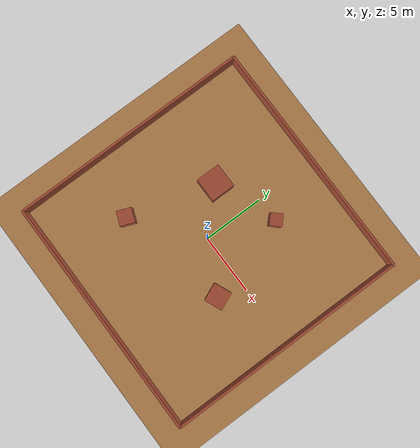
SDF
<sdf version='1.7'>
  <world name='indoor_2d'>
    <light name='sun' type='directional'>
      <cast_shadows>1</cast_shadows>
      <pose>0 0 10 0 -0 0</pose>
      <diffuse>0.8 0.8 0.8 1</diffuse>
      <specular>0.2 0.2 0.2 1</specular>
      <attenuation>
        <range>1000</range>
        <constant>0.9</constant>
        <linear>0.01</linear>
        <quadratic>0.001</quadratic>
      </attenuation>
      <direction>-0.5 0.1 -0.9</direction>
      <spot>
        <inner_angle>0</inner_angle>
        <outer_angle>0</outer_angle>
        <falloff>0</falloff>
      </spot>
    </light>

    <model name='ground_plane'>
      <static>1</static>
      <link name='link'>
        <collision name='collision'>
          <geometry>
            <plane>
              <normal>0 0 1</normal>
              <size>100 100</size>
            </plane>
          </geometry>
          <surface>
            <contact>
              <collide_bitmask>65535</collide_bitmask>
              <ode/>
            </contact>
            <friction>
              <ode>
                <mu>100</mu>
                <mu2>50</mu2>
              </ode>
              <torsional>
                <ode/>
              </torsional>
            </friction>
            <bounce/>
          </surface>
          <max_contacts>10</max_contacts>
        </collision>
        <visual name='visual'>
          <cast_shadows>0</cast_shadows>
          <geometry>
            <plane>
              <normal>0 0 1</normal>
              <size>100 100</size>
            </plane>
          </geometry>
          <material>
            <script>
              <uri>file://media/materials/scripts/gazebo.material</uri>
              <name>Gazebo/WoodFloor</name>
            </script>
          </material>
        </visual>
        <self_collide>0</self_collide>
        <enable_wind>0</enable_wind>
        <kinematic>0</kinematic>
      </link>
    </model>

    <gravity>0 0 -9.8</gravity>
    <magnetic_field>6e-06 2.3e-05 -4.2e-05</magnetic_field>
    <atmosphere type='adiabatic'/>
    <physics type='ode'>
      <max_step_size>0.005</max_step_size>
      <real_time_factor>1</real_time_factor>
      <real_time_update_rate>200</real_time_update_rate>
    </physics>
    <scene>
      <ambient>0.4 0.4 0.4 1</ambient>
      <background>0.7 0.7 0.7 1</background>
      <shadows>1</shadows>
    </scene>

    <!-- 四面墙：20m x 20m 房间 -->
    <model name='wall_north'>
      <static>1</static>
      <link name='link'>
        <pose>0 10 0.5 0 0 0</pose>
        <collision name='collision'>
          <geometry><box><size>20 0.2 1</size></box></geometry>
        </collision>
        <visual name='visual'>
          <geometry><box><size>20 0.2 1</size></box></geometry>
          <material><script><uri>file://media/materials/scripts/gazebo.material</uri><name>Gazebo/Bricks</name></script></material>
        </visual>
      </link>
    </model>

    <model name='wall_south'>
      <static>1</static>
      <link name='link'>
        <pose>0 -10 0.5 0 0 0</pose>
        <collision name='collision'>
          <geometry><box><size>20 0.2 1</size></box></geometry>
        </collision>
        <visual name='visual'>
          <geometry><box><size>20 0.2 1</size></box></geometry>
          <material><script><uri>file://media/materials/scripts/gazebo.material</uri><name>Gazebo/Bricks</name></script></material>
        </visual>
      </link>
    </model>

    <model name='wall_east'>
      <static>1</static>
      <link name='link'>
        <pose>10 0 0.5 0 0 0</pose>
        <collision name='collision'>
          <geometry><box><size>0.2 20 1</size></box></geometry>
        </collision>
        <visual name='visual'>
          <geometry><box><size>0.2 20 1</size></box></geometry>
          <material><script><uri>file://media/materials/scripts/gazebo.material</uri><name>Gazebo/Bricks</name></script></material>
        </visual>
      </link>
    </model>

    <model name='wall_west'>
      <static>1</static>
      <link name='link'>
        <pose>-10 0 0.5 0 0 0</pose>
        <collision name='collision'>
          <geometry><box><size>0.2 20 1</size></box></geometry>
        </collision>
        <visual name='visual'>
          <geometry><box><size>0.2 20 1</size></box></geometry>
          <material><script><uri>file://media/materials/scripts/gazebo.material</uri><name>Gazebo/Bricks</name></script></material>
        </visual>
      </link>
    </model>

    <!-- 内部隔断：提供 SLAM 特征 -->
    <model name='box_1'>
      <static>1</static>
      <link name='link'>
        <pose>-3 3 0.5 0 0 0</pose>
        <collision name='collision'>
          <geometry><box><size>2 2 1</size></box></geometry>
        </collision>
        <visual name='visual'>
          <geometry><box><size>2 2 1</size></box></geometry>
          <material><script><uri>file://media/materials/scripts/gazebo.material</uri><name>Gazebo/Bricks</name></script></material>
        </visual>
      </link>
    </model>

    <model name='box_2'>
      <static>1</static>
      <link name='link'>
        <pose>4 -2 0.5 0 0 0.4</pose>
        <collision name='collision'>
          <geometry><box><size>1.5 1.5 1</size></box></geometry>
        </collision>
        <visual name='visual'>
          <geometry><box><size>1.5 1.5 1</size></box></geometry>
          <material><script><uri>file://media/materials/scripts/gazebo.material</uri><name>Gazebo/Bricks</name></script></material>
        </visual>
      </link>
    </model>

    <model name='box_3'>
      <static>1</static>
      <link name='link'>
        <pose>2 5 0.5 0 0 0.8</pose>
        <collision name='collision'>
          <geometry><box><size>1 1 1</size></box></geometry>
        </collision>
        <visual name='visual'>
          <geometry><box><size>1 1 1</size></box></geometry>
          <material><script><uri>file://media/materials/scripts/gazebo.material</uri><name>Gazebo/Bricks</name></script></material>
        </visual>
      </link>
    </model>

    <model name='box_4'>
      <static>1</static>
      <link name='link'>
        <pose>-5 -4 0.5 0 0 1.2</pose>
        <collision name='collision'>
          <geometry><box><size>1.2 1.2 1</size></box></geometry>
        </collision>
        <visual name='visual'>
          <geometry><box><size>1.2 1.2 1</size></box></geometry>
          <material><script><uri>file://media/materials/scripts/gazebo.material</uri><name>Gazebo/Bricks</name></script></material>
        </visual>
      </link>
    </model>

  </world>
</sdf>
